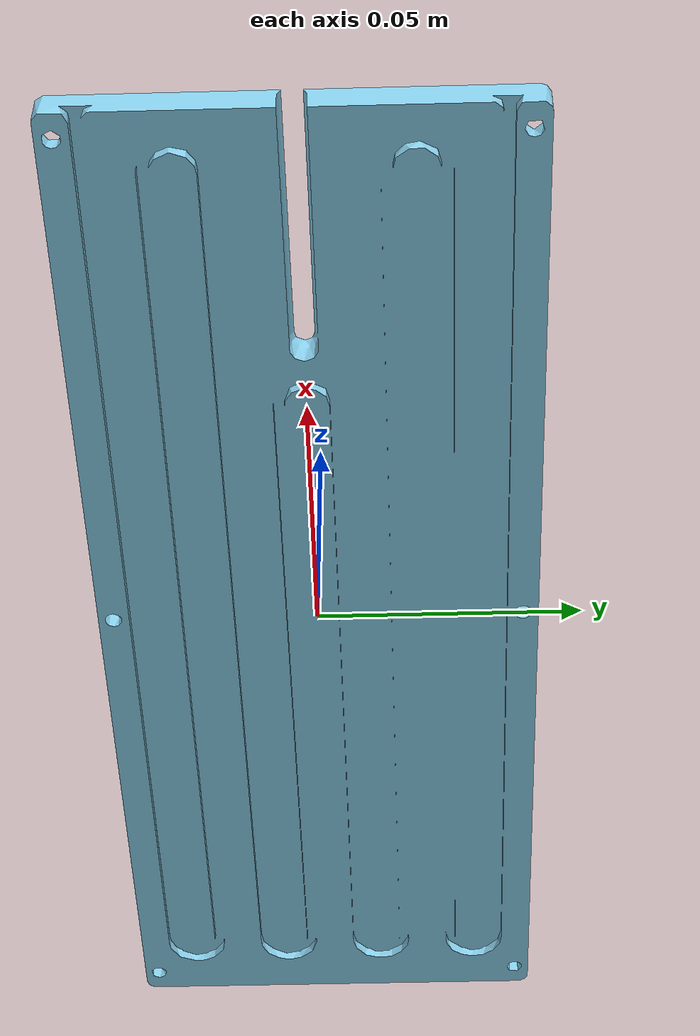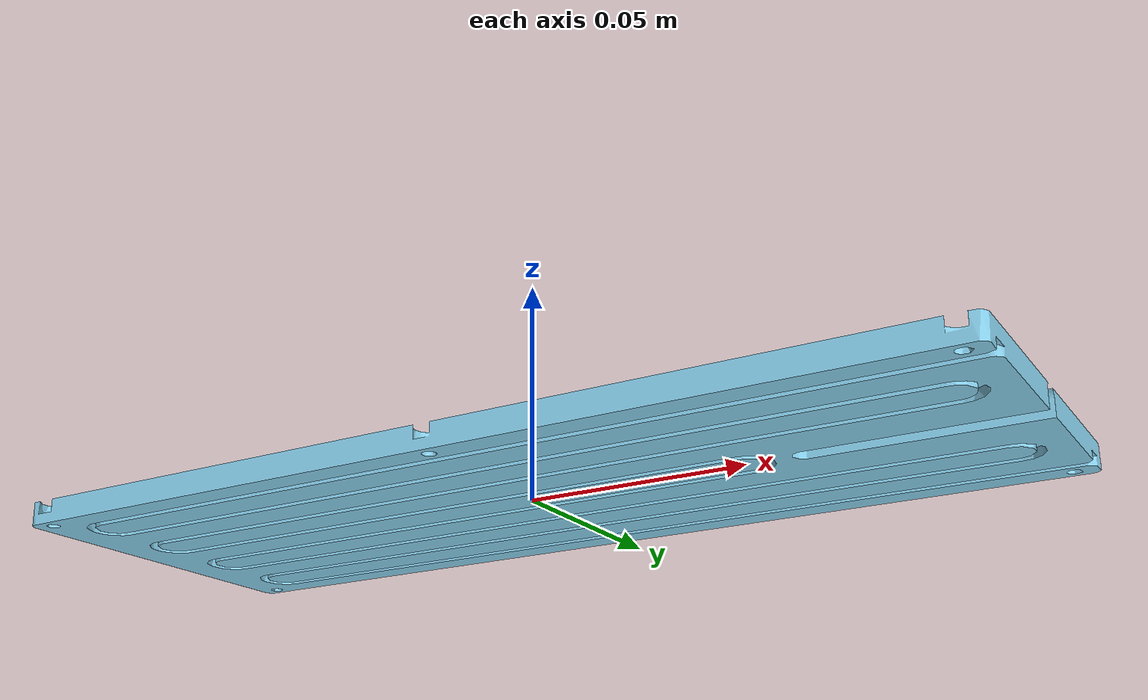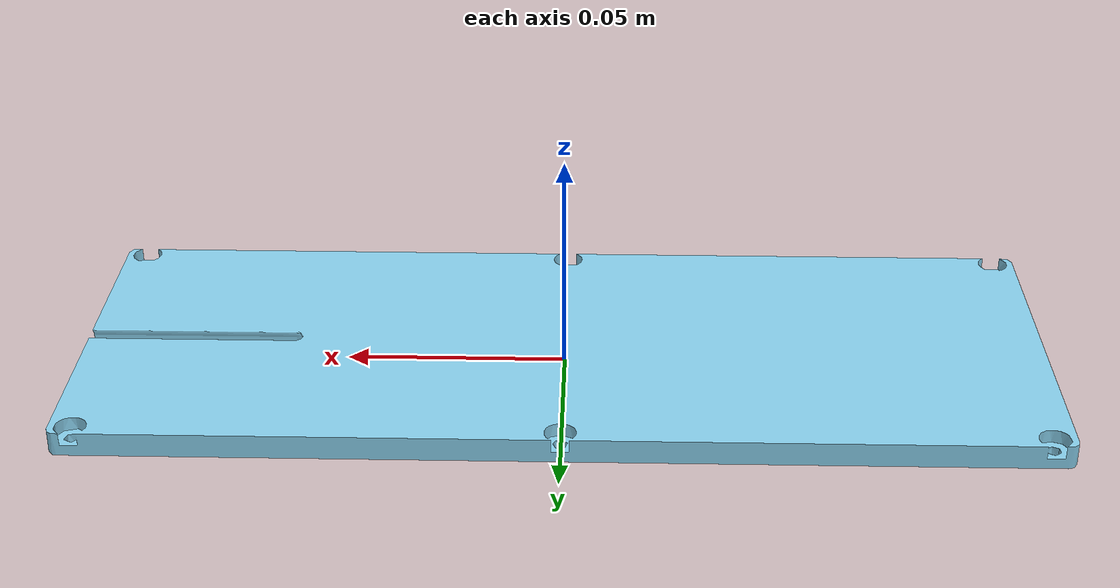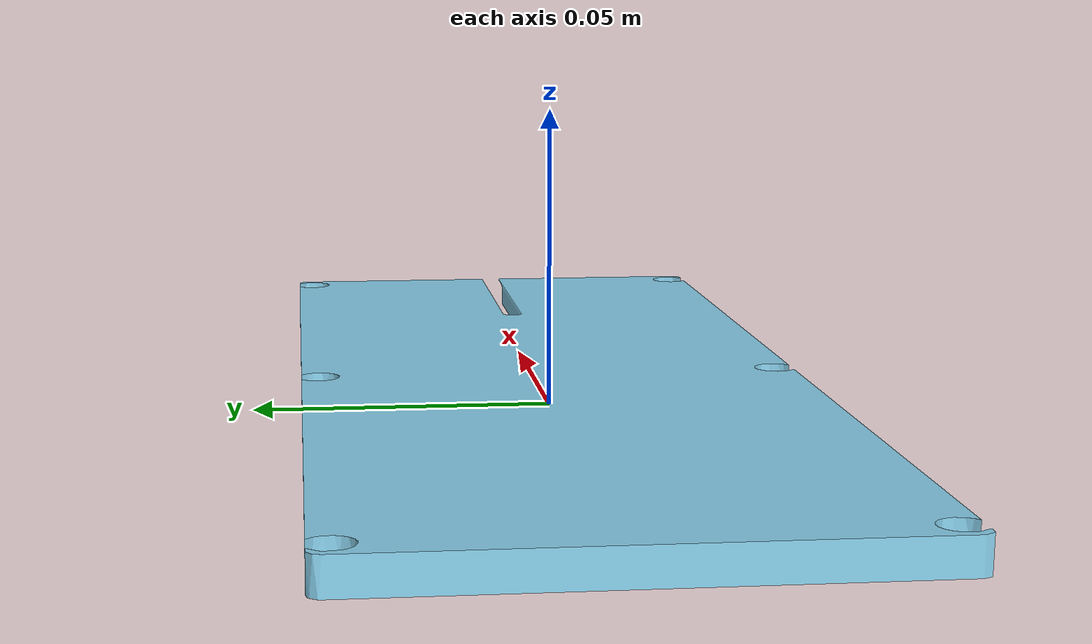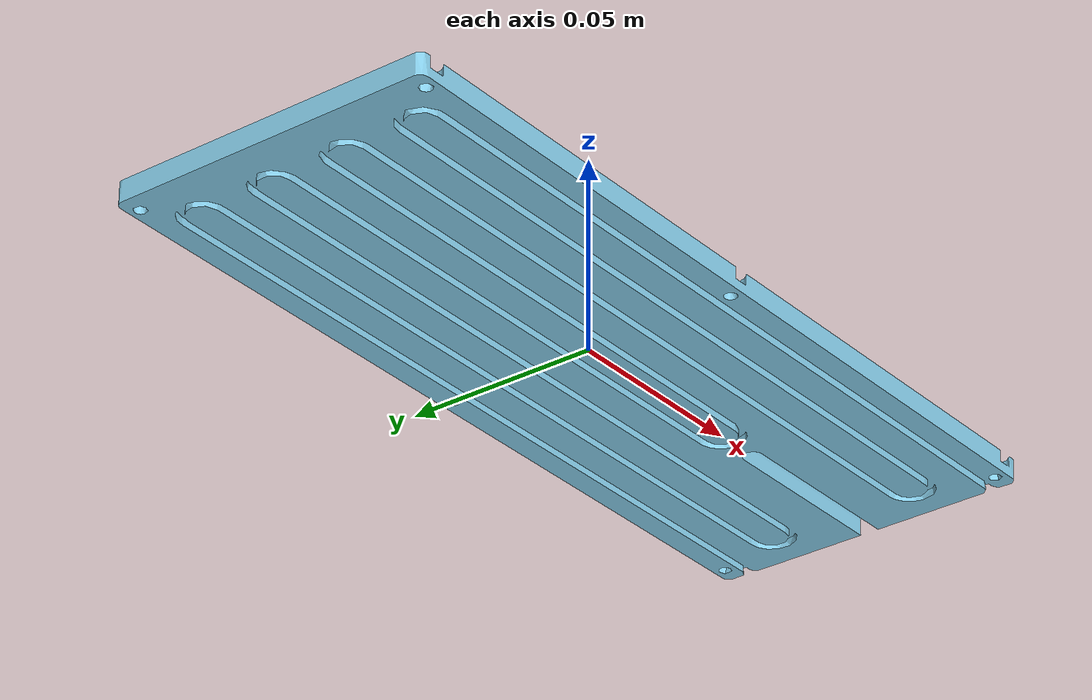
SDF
<?xml version="1.0" ?>
<sdf version="1.6">
  <model name="heating_plate1">
    <link name="link">
      <gravity>false</gravity>
      <visual name="visual">
        <geometry>
          <mesh>
            <uri>file:///root/workcell_ws_classic/src/descriptions/ur_description/meshes/feeder/heater/objects/heating_plate1.STL</uri>
            <scale>1 1 1</scale>
          </mesh>
        </geometry>
        <material>
          <!-- Light sky blue -->
          <ambient>0.25 0.35 0.45 1</ambient>
          <diffuse>0.53 0.81 0.92 1</diffuse> <!-- classic "skyblue" tone -->
          <specular>0.2 0.25 0.3 1</specular>
          <emissive>0 0 0 1</emissive>
        </material>
      </visual>

        <inertial>
          <mass>1.0</mass>
          <inertia>
            <ixx>0.0066667</ixx>
            <ixy>0</ixy>
            <ixz>0</ixz>
            <iyy>0.0066667</iyy>
            <iyz>0</iyz>
            <izz>0.0066667</izz>
          </inertia>
        </inertial>
    </link>
  </model>
</sdf>
